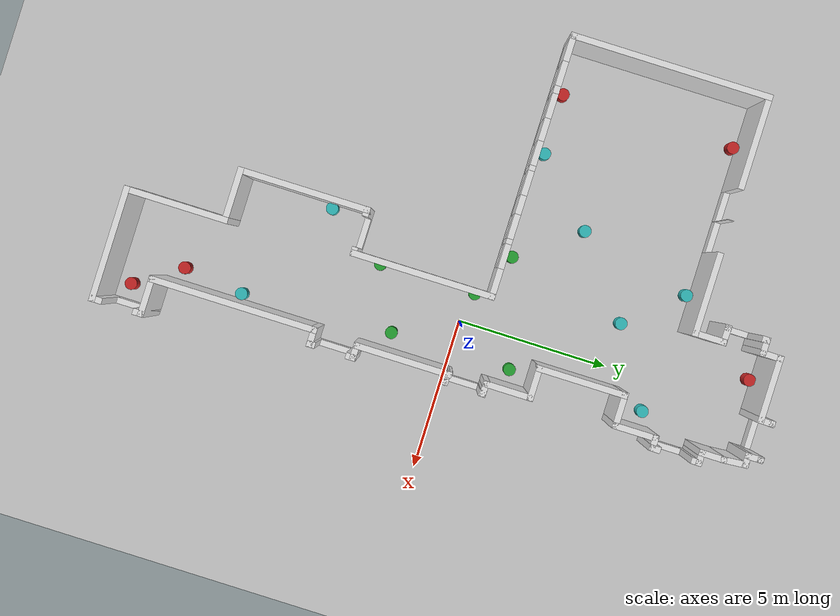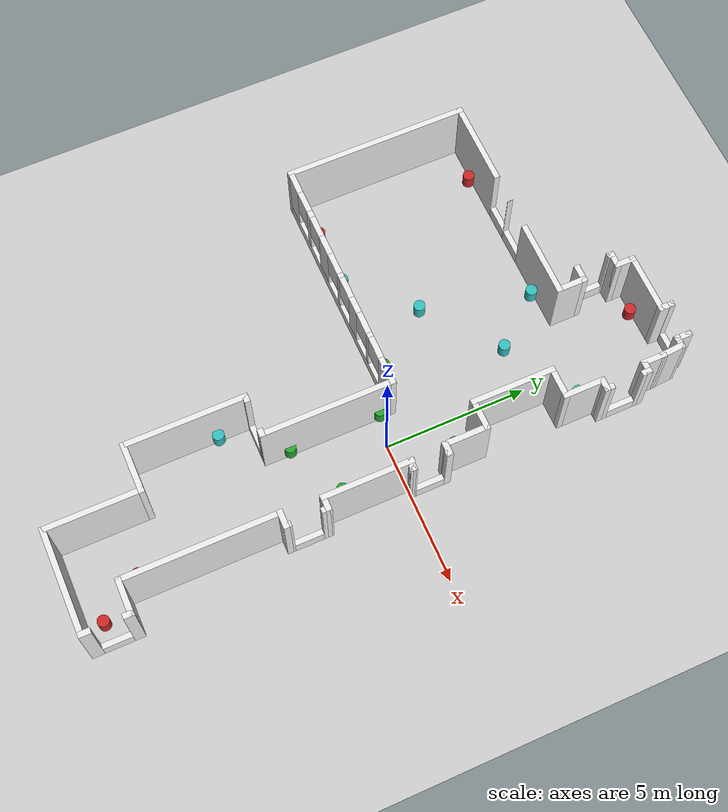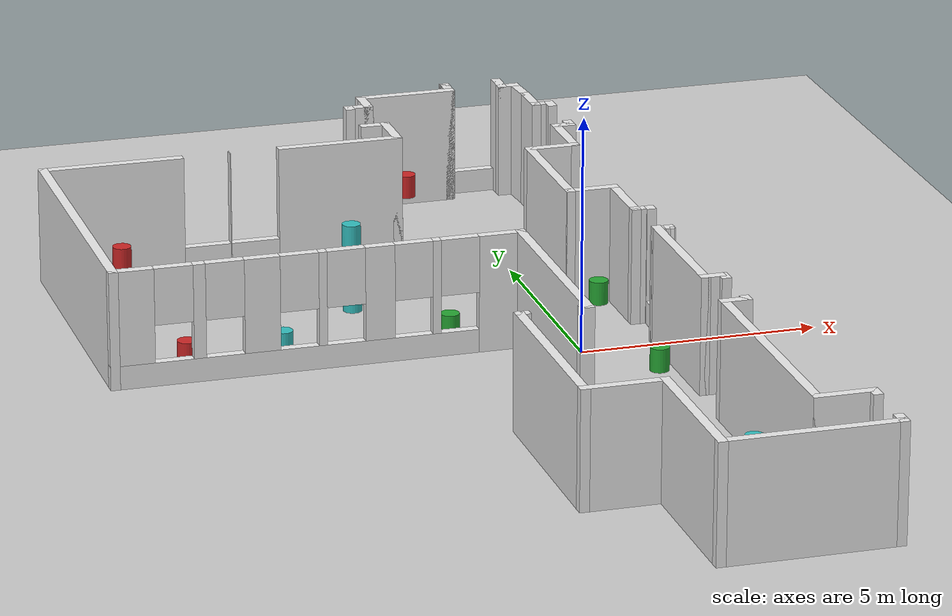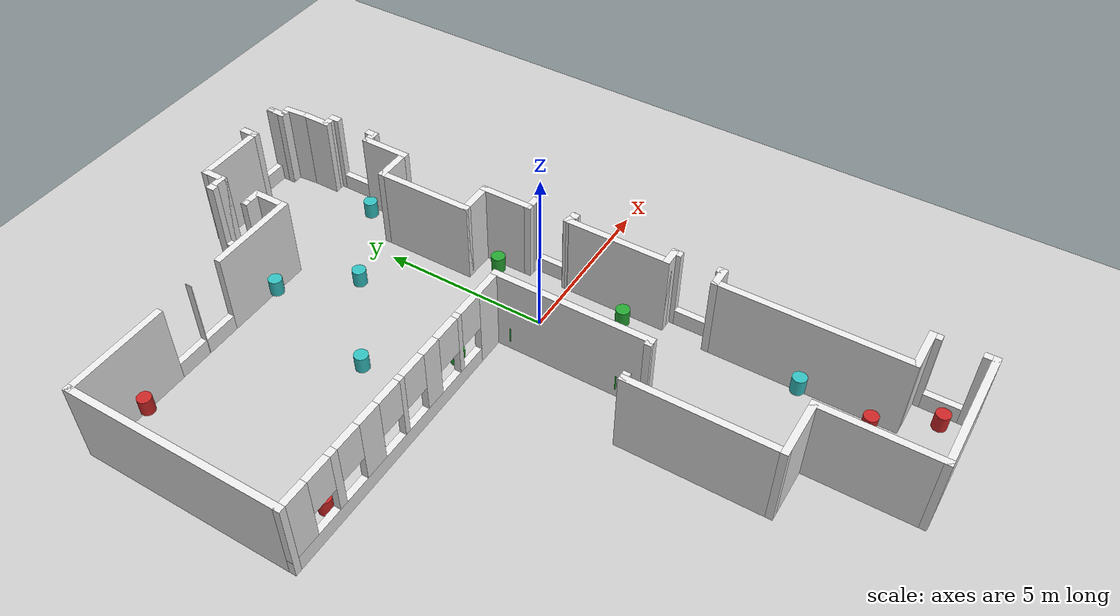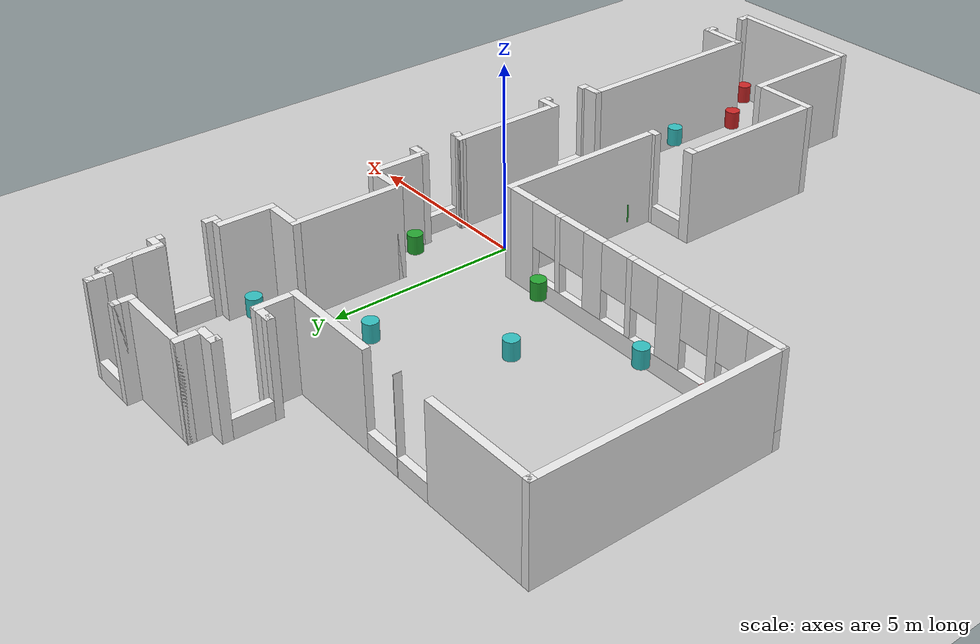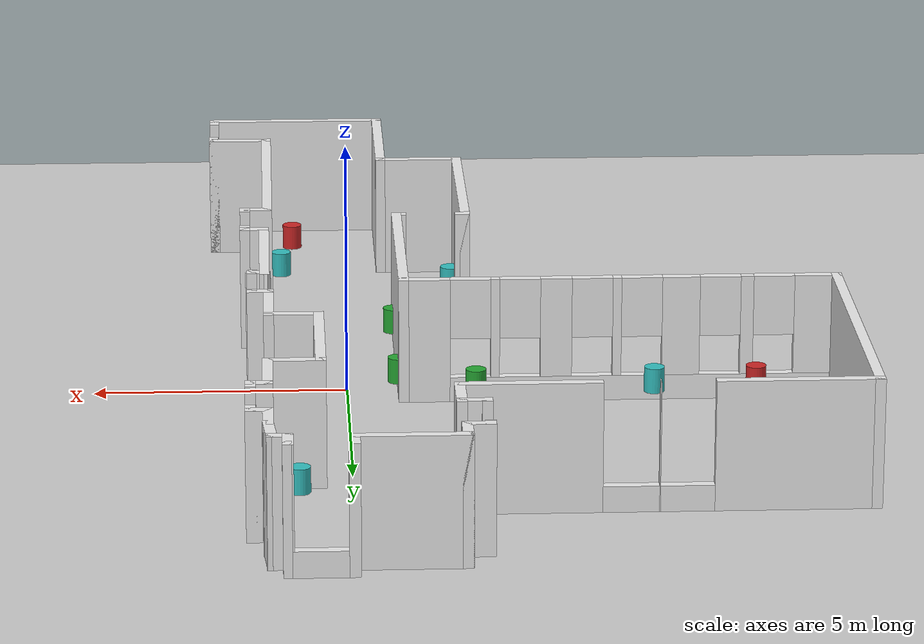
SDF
<?xml version="1.0" ?>
<sdf version="1.4">
  <world name="default">
    <!-- Set camera position -->
    <gui fullscreen='0'>
      <camera name='user_camera'>
        <pose>-2 0.5 35 0 1.5618 -3.13384</pose>
        <view_controller>orbit</view_controller>
      </camera>
    </gui>
    <!-- A global light source -->
    <include>
      <uri>model://sun</uri>
    </include>
    <!-- A ground plane -->
    <include>
      <uri>model://ground_plane</uri>
    </include>
    <!-- IRI Lab Robotica -->
    <include>
      <uri>model://etseib_2pis</uri>
    </include>
    <!-- cilindres nivell 1 -->
    <model name='unit_cylinder_1'>
      <pose>-1 0.2 0.5 0 0 0</pose>
      <link name='link'>
        <inertial>
          <mass>1</mass>
          <inertia>
            <ixx>1</ixx>
            <ixy>0</ixy>
            <ixz>0</ixz>
            <iyy>1</iyy>
            <iyz>0</iyz>
            <izz>1</izz>
          </inertia>
        </inertial>
        <collision name='collision'>
          <geometry>
             <cylinder>
              <radius>0.2</radius>
              <length>0.5</length>
            </cylinder>
          </geometry>
          <max_contacts>10</max_contacts>
        </collision>
        <visual name='visual'>
          <geometry>
             <cylinder>
              <radius>0.2</radius>
              <length>0.5</length>
            </cylinder>
          </geometry>
          <material>
            <script>
              <uri>file://media/materials/scripts/gazebo.material</uri>
              <name>Gazebo/Green</name>
            </script>
          </material>
        </visual>
        <self_collide>0</self_collide>
        <kinematic>0</kinematic>
        <gravity>1</gravity>
      </link>
      <static>0</static>
    </model>
    <model name='unit_cylinder_2'>
      <pose>1 2 0.5 0 0 0</pose>
      <link name='link'>
        <inertial>
          <mass>1</mass>
          <inertia>
            <ixx>1</ixx>
            <ixy>0</ixy>
            <ixz>0</ixz>
            <iyy>1</iyy>
            <iyz>0</iyz>
            <izz>1</izz>
          </inertia>
        </inertial>
        <collision name='collision'>
          <geometry>
             <cylinder>
              <radius>0.2</radius>
              <length>0.5</length>
            </cylinder>
          </geometry>
          <max_contacts>10</max_contacts>
        </collision>
        <visual name='visual'>
          <geometry>
             <cylinder>
              <radius>0.2</radius>
              <length>0.5</length>
            </cylinder>
          </geometry>
          <material>
            <script>
              <uri>file://media/materials/scripts/gazebo.material</uri>
              <name>Gazebo/Green</name>
            </script>
          </material>
        </visual>
        <self_collide>0</self_collide>
        <kinematic>0</kinematic>
        <gravity>1</gravity>
      </link>
      <static>0</static>
    </model>
    <model name='unit_cylinder_3'>
      <pose>1 -2 0.5 0 0 0</pose>
      <link name='link'>
        <inertial>
          <mass>1</mass>
          <inertia>
            <ixx>1</ixx>
            <ixy>0</ixy>
            <ixz>0</ixz>
            <iyy>1</iyy>
            <iyz>0</iyz>
            <izz>1</izz>
          </inertia>
        </inertial>
        <collision name='collision'>
          <geometry>
             <cylinder>
              <radius>0.2</radius>
              <length>0.5</length>
            </cylinder>
          </geometry>
          <max_contacts>10</max_contacts>
        </collision>
        <visual name='visual'>
          <geometry>
             <cylinder>
              <radius>0.2</radius>
              <length>0.5</length>
            </cylinder>
          </geometry>
          <material>
            <script>
              <uri>file://media/materials/scripts/gazebo.material</uri>
              <name>Gazebo/Green</name>
            </script>
          </material>
        </visual>
        <self_collide>0</self_collide>
        <kinematic>0</kinematic>
        <gravity>1</gravity>
      </link>
      <static>0</static>
    </model>
    <model name='unit_cylinder_4'>
      <pose>-1 -3 0.5 0 0 0</pose>
      <link name='link'>
        <inertial>
          <mass>1</mass>
          <inertia>
            <ixx>1</ixx>
            <ixy>0</ixy>
            <ixz>0</ixz>
            <iyy>1</iyy>
            <iyz>0</iyz>
            <izz>1</izz>
          </inertia>
        </inertial>
        <collision name='collision'>
          <geometry>
             <cylinder>
              <radius>0.2</radius>
              <length>0.5</length>
            </cylinder>
          </geometry>
          <max_contacts>10</max_contacts>
        </collision>
        <visual name='visual'>
          <geometry>
             <cylinder>
              <radius>0.2</radius>
              <length>0.5</length>
            </cylinder>
          </geometry>
          <material>
            <script>
              <uri>file://media/materials/scripts/gazebo.material</uri>
              <name>Gazebo/Green</name>
            </script>
          </material>
        </visual>
        <self_collide>0</self_collide>
        <kinematic>0</kinematic>
        <gravity>1</gravity>
      </link>
      <static>0</static>
    </model>
    <model name='unit_cylinder_5'>
      <pose>-2.5 1 0.5 0 0 0</pose>
      <link name='link'>
        <inertial>
          <mass>1</mass>
          <inertia>
            <ixx>1</ixx>
            <ixy>0</ixy>
            <ixz>0</ixz>
            <iyy>1</iyy>
            <iyz>0</iyz>
            <izz>1</izz>
          </inertia>
        </inertial>
        <collision name='collision'>
          <geometry>
             <cylinder>
              <radius>0.2</radius>
              <length>0.5</length>
            </cylinder>
          </geometry>
          <max_contacts>10</max_contacts>
        </collision>
        <visual name='visual'>
          <geometry>
             <cylinder>
              <radius>0.2</radius>
              <length>0.5</length>
            </cylinder>
          </geometry>
          <material>
            <script>
              <uri>file://media/materials/scripts/gazebo.material</uri>
              <name>Gazebo/Green</name>
            </script>
          </material>
        </visual>
        <self_collide>0</self_collide>
        <kinematic>0</kinematic>
        <gravity>1</gravity>
      </link>
      <static>0</static>
    </model>
    <!-- cilindres nivell 2 -->
    <model name='unit_cylinder_6'>
      <pose>-2.25 -5 0.75 0 0 0</pose>
      <link name='link'>
        <inertial>
          <mass>1</mass>
          <inertia>
            <ixx>1</ixx>
            <ixy>0</ixy>
            <ixz>0</ixz>
            <iyy>1</iyy>
            <iyz>0</iyz>
            <izz>1</izz>
          </inertia>
        </inertial>
        <collision name='collision'>
          <geometry>
             <cylinder>
              <radius>0.2</radius>
              <length>0.5</length>
            </cylinder>
          </geometry>
          <max_contacts>10</max_contacts>
        </collision>
        <visual name='visual'>
          <geometry>
             <cylinder>
              <radius>0.2</radius>
              <length>0.5</length>
            </cylinder>
          </geometry>
          <material>
            <script>
              <uri>file://media/materials/scripts/gazebo.material</uri>
              <name>Gazebo/Turquoise</name>
            </script>
          </material>
        </visual>
        <self_collide>0</self_collide>
        <kinematic>0</kinematic>
        <gravity>1</gravity>
      </link>
      <static>0</static>
    </model>
    <model name='unit_cylinder_7'>
      <pose>1.25 -7 0.5 0 0 0</pose>
      <link name='link'>
        <inertial>
          <mass>1</mass>
          <inertia>
            <ixx>1</ixx>
            <ixy>0</ixy>
            <ixz>0</ixz>
            <iyy>1</iyy>
            <iyz>0</iyz>
            <izz>1</izz>
          </inertia>
        </inertial>
        <collision name='collision'>
          <geometry>
             <cylinder>
              <radius>0.2</radius>
              <length>0.5</length>
            </cylinder>
          </geometry>
          <max_contacts>10</max_contacts>
        </collision>
        <visual name='visual'>
          <geometry>
             <cylinder>
              <radius>0.2</radius>
              <length>0.5</length>
            </cylinder>
          </geometry>
          <material>
            <script>
              <uri>file://media/materials/scripts/gazebo.material</uri>
              <name>Gazebo/Turquoise</name>
            </script>
          </material>
        </visual>
        <self_collide>0</self_collide>
        <kinematic>0</kinematic>
        <gravity>1</gravity>
      </link>
      <static>0</static>
    </model>
    <model name='unit_cylinder_8'>
      <pose>-1.5 5 0.5 0 0 0</pose>
      <link name='link'>
        <inertial>
          <mass>1</mass>
          <inertia>
            <ixx>1</ixx>
            <ixy>0</ixy>
            <ixz>0</ixz>
            <iyy>1</iyy>
            <iyz>0</iyz>
            <izz>1</izz>
          </inertia>
        </inertial>
        <collision name='collision'>
          <geometry>
             <cylinder>
              <radius>0.2</radius>
              <length>0.5</length>
            </cylinder>
          </geometry>
          <max_contacts>10</max_contacts>
        </collision>
        <visual name='visual'>
          <geometry>
             <cylinder>
              <radius>0.2</radius>
              <length>0.5</length>
            </cylinder>
          </geometry>
          <material>
            <script>
              <uri>file://media/materials/scripts/gazebo.material</uri>
              <name>Gazebo/Turquoise</name>
            </script>
          </material>
        </visual>
        <self_collide>0</self_collide>
        <kinematic>0</kinematic>
        <gravity>1</gravity>
      </link>
      <static>0</static>
    </model>
    <model name='unit_cylinder_9'>
      <pose>1 6.5 0.5 0 0 0</pose>
      <link name='link'>
        <inertial>
          <mass>1</mass>
          <inertia>
            <ixx>1</ixx>
            <ixy>0</ixy>
            <ixz>0</ixz>
            <iyy>1</iyy>
            <iyz>0</iyz>
            <izz>1</izz>
          </inertia>
        </inertial>
        <collision name='collision'>
          <geometry>
             <cylinder>
              <radius>0.2</radius>
              <length>0.5</length>
            </cylinder>
          </geometry>
          <max_contacts>10</max_contacts>
        </collision>
        <visual name='visual'>
          <geometry>
             <cylinder>
              <radius>0.2</radius>
              <length>0.5</length>
            </cylinder>
          </geometry>
          <material>
            <script>
              <uri>file://media/materials/scripts/gazebo.material</uri>
              <name>Gazebo/Turquoise</name>
            </script>
          </material>
        </visual>
        <self_collide>0</self_collide>
        <kinematic>0</kinematic>
        <gravity>1</gravity>
      </link>
      <static>0</static>
    </model>
    <model name='unit_cylinder_10'>
      <pose>-3 6.75 0.5 0 0 0</pose>
      <link name='link'>
        <inertial>
          <mass>1</mass>
          <inertia>
            <ixx>1</ixx>
            <ixy>0</ixy>
            <ixz>0</ixz>
            <iyy>1</iyy>
            <iyz>0</iyz>
            <izz>1</izz>
          </inertia>
        </inertial>
        <collision name='collision'>
          <geometry>
             <cylinder>
              <radius>0.2</radius>
              <length>0.5</length>
            </cylinder>
          </geometry>
          <max_contacts>10</max_contacts>
        </collision>
        <visual name='visual'>
          <geometry>
             <cylinder>
              <radius>0.2</radius>
              <length>0.5</length>
            </cylinder>
          </geometry>
          <material>
            <script>
              <uri>file://media/materials/scripts/gazebo.material</uri>
              <name>Gazebo/Turquoise</name>
            </script>
          </material>
        </visual>
        <self_collide>0</self_collide>
        <kinematic>0</kinematic>
        <gravity>1</gravity>
      </link>
      <static>0</static>
    </model>
    <model name='unit_cylinder_11'>
      <pose>-4 3 0.5 0 0 0</pose>
      <link name='link'>
        <inertial>
          <mass>1</mass>
          <inertia>
            <ixx>1</ixx>
            <ixy>0</ixy>
            <ixz>0</ixz>
            <iyy>1</iyy>
            <iyz>0</iyz>
            <izz>1</izz>
          </inertia>
        </inertial>
        <collision name='collision'>
          <geometry>
             <cylinder>
              <radius>0.2</radius>
              <length>0.5</length>
            </cylinder>
          </geometry>
          <max_contacts>10</max_contacts>
        </collision>
        <visual name='visual'>
          <geometry>
             <cylinder>
              <radius>0.2</radius>
              <length>0.5</length>
            </cylinder>
          </geometry>
          <material>
            <script>
              <uri>file://media/materials/scripts/gazebo.material</uri>
              <name>Gazebo/Turquoise</name>
            </script>
          </material>
        </visual>
        <self_collide>0</self_collide>
        <kinematic>0</kinematic>
        <gravity>1</gravity>
      </link>
      <static>0</static>
    </model>
    <model name='unit_cylinder_12'>
      <pose>-6 1 0.5 0 0 0</pose>
      <link name='link'>
        <inertial>
          <mass>1</mass>
          <inertia>
            <ixx>1</ixx>
            <ixy>0</ixy>
            <ixz>0</ixz>
            <iyy>1</iyy>
            <iyz>0</iyz>
            <izz>1</izz>
          </inertia>
        </inertial>
        <collision name='collision'>
          <geometry>
             <cylinder>
              <radius>0.2</radius>
              <length>0.5</length>
            </cylinder>
          </geometry>
          <max_contacts>10</max_contacts>
        </collision>
        <visual name='visual'>
          <geometry>
             <cylinder>
              <radius>0.2</radius>
              <length>0.5</length>
            </cylinder>
          </geometry>
          <material>
            <script>
              <uri>file://media/materials/scripts/gazebo.material</uri>
              <name>Gazebo/Turquoise</name>
            </script>
          </material>
        </visual>
        <self_collide>0</self_collide>
        <kinematic>0</kinematic>
        <gravity>1</gravity>
      </link>
      <static>0</static>
    </model>
    <!-- cilindres nivell 3 -->
    <model name='unit_cylinder_13'>
      <pose>-1 9.5 0.5 0 0 0</pose>
      <link name='link'>
        <inertial>
          <mass>1</mass>
          <inertia>
            <ixx>1</ixx>
            <ixy>0</ixy>
            <ixz>0</ixz>
            <iyy>1</iyy>
            <iyz>0</iyz>
            <izz>1</izz>
          </inertia>
        </inertial>
        <collision name='collision'>
          <geometry>
            <cylinder>
              <radius>0.2</radius>
              <length>0.5</length>
            </cylinder>
          </geometry>
          <max_contacts>10</max_contacts>
        </collision>
        <visual name='visual'>
          <geometry>
             <cylinder>
              <radius>0.2</radius>
              <length>0.5</length>
            </cylinder>
          </geometry>
          <material>
            <script>
              <uri>file://media/materials/scripts/gazebo.material</uri>
              <name>Gazebo/Red</name>
            </script>
          </material>
        </visual>
        <self_collide>0</self_collide>
        <kinematic>0</kinematic>
        <gravity>1</gravity>
      </link>
      <static>0</static>
    </model>
    <model name='unit_cylinder_14'>
      <pose>-8 6.75 0.5 0 0 0</pose>
      <link name='link'>
        <inertial>
          <mass>1</mass>
          <inertia>
            <ixx>1</ixx>
            <ixy>0</ixy>
            <ixz>0</ixz>
            <iyy>1</iyy>
            <iyz>0</iyz>
            <izz>1</izz>
          </inertia>
        </inertial>
        <collision name='collision'>
          <geometry>
             <cylinder>
              <radius>0.2</radius>
              <length>0.5</length>
            </cylinder>
          </geometry>
          <max_contacts>10</max_contacts>
        </collision>
        <visual name='visual'>
          <geometry>
             <cylinder>
              <radius>0.2</radius>
              <length>0.5</length>
            </cylinder>
          </geometry>
          <material>
            <script>
              <uri>file://media/materials/scripts/gazebo.material</uri>
              <name>Gazebo/Red</name>
            </script>
          </material>
        </visual>
        <self_collide>0</self_collide>
        <kinematic>0</kinematic>
        <gravity>1</gravity>
      </link>
      <static>0</static>
    </model>
    <model name='unit_cylinder_15'>
      <pose>-8 1 0.5 0 0 0</pose>
      <link name='link'>
        <inertial>
          <mass>1</mass>
          <inertia>
            <ixx>1</ixx>
            <ixy>0</ixy>
            <ixz>0</ixz>
            <iyy>1</iyy>
            <iyz>0</iyz>
            <izz>1</izz>
          </inertia>
        </inertial>
        <collision name='collision'>
          <geometry>
             <cylinder>
              <radius>0.2</radius>
              <length>0.5</length>
            </cylinder>
          </geometry>
          <max_contacts>10</max_contacts>
        </collision>
        <visual name='visual'>
          <geometry>
             <cylinder>
              <radius>0.2</radius>
              <length>0.5</length>
            </cylinder>
          </geometry>
          <material>
            <script>
              <uri>file://media/materials/scripts/gazebo.material</uri>
              <name>Gazebo/Red</name>
            </script>
          </material>
        </visual>
        <self_collide>0</self_collide>
        <kinematic>0</kinematic>
        <gravity>1</gravity>
      </link>
      <static>0</static>
    </model>
    <model name='unit_cylinder_16'>
      <pose>1 -9 0.5 0 0 0</pose>
      <link name='link'>
        <inertial>
          <mass>1</mass>
          <inertia>
            <ixx>1</ixx>
            <ixy>0</ixy>
            <ixz>0</ixz>
            <iyy>1</iyy>
            <iyz>0</iyz>
            <izz>1</izz>
          </inertia>
        </inertial>
        <collision name='collision'>
          <geometry>
             <cylinder>
              <radius>0.2</radius>
              <length>0.5</length>
            </cylinder>
          </geometry>
          <max_contacts>10</max_contacts>
        </collision>
        <visual name='visual'>
          <geometry>
             <cylinder>
              <radius>0.2</radius>
              <length>0.5</length>
            </cylinder>
          </geometry>
          <material>
            <script>
              <uri>file://media/materials/scripts/gazebo.material</uri>
              <name>Gazebo/Red</name>
            </script>
          </material>
        </visual>
        <self_collide>0</self_collide>
        <kinematic>0</kinematic>
        <gravity>1</gravity>
      </link>
      <static>0</static>
    </model>
    <model name='unit_cylinder_17'>
      <pose>2 -10.5 0.5 0 0 0</pose>
      <link name='link'>
        <inertial>
          <mass>1</mass>
          <inertia>
            <ixx>1</ixx>
            <ixy>0</ixy>
            <ixz>0</ixz>
            <iyy>1</iyy>
            <iyz>0</iyz>
            <izz>1</izz>
          </inertia>
        </inertial>
        <collision name='collision'>
          <geometry>
             <cylinder>
              <radius>0.2</radius>
              <length>0.5</length>
            </cylinder>
          </geometry>
          <max_contacts>10</max_contacts>
        </collision>
        <visual name='visual'>
          <geometry>
             <cylinder>
              <radius>0.2</radius>
              <length>0.5</length>
            </cylinder>
          </geometry>
          <material>
            <script>
              <uri>file://media/materials/scripts/gazebo.material</uri>
              <name>Gazebo/Red</name>
            </script>
          </material>
        </visual>
        <self_collide>0</self_collide>
        <kinematic>0</kinematic>
        <gravity>1</gravity>
      </link>
      <static>0</static>
    </model>
  </world>
</sdf>
